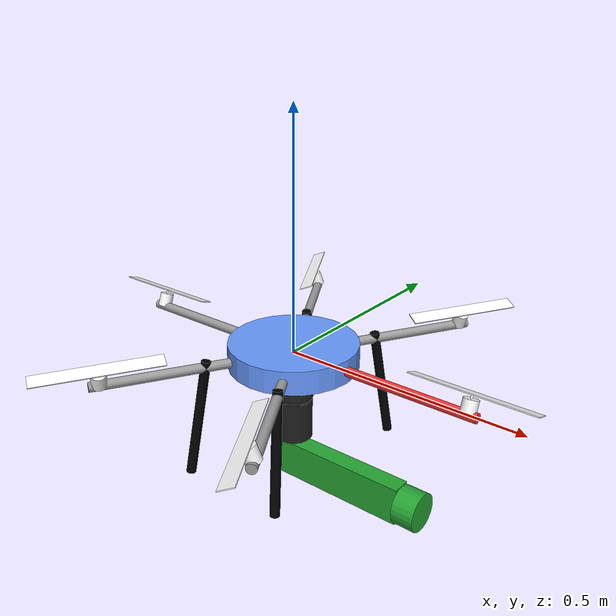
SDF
<?xml version="1.0" ?>

<sdf version="1.5">
  <model name="mrsim-tilthex">
    <link name="base">
      <inertial>
        <mass>2.3</mass>
        <inertia>
          <ixx>0.0115</ixx><ixy>0</ixy><ixz>0</ixz>
          <iyy>0.0114</iyy><iyz>0</iyz>
          <izz>0.0194</izz>
        </inertia>
      </inertial>

      <collision name="base">
	<pose>0 0 0 0 0 0</pose>
        <geometry>
          <cylinder><radius>0.1354</radius><length>0.05</length></cylinder>
        </geometry>
      </collision>
      <!-- three spheres to make contact stable -->
      <collision name="land_1">
        <pose>0.2 0 -0.21 0 0 0</pose>
        <geometry>
          <sphere><radius>0.03</radius></sphere>
        </geometry>
      </collision>
      <collision name="land_2">
        <pose>-0.1 0.173 -0.21 0 0 0</pose>
        <geometry>
          <sphere><radius>0.03</radius></sphere>
        </geometry>
      </collision>
      <collision name="land_3">
        <pose>-0.1 -0.173 -0.21 0 0 0</pose>
        <geometry>
          <sphere><radius>0.03</radius></sphere>
        </geometry>
      </collision>

      <visual name="body">
        <geometry>
          <cylinder><radius>0.1354</radius><length>0.05</length></cylinder>
        </geometry>
        <material>
          <ambient>0.4 0.6 1.0 1</ambient>
          <diffuse>0.4 0.6 1.0 1</diffuse>
        </material>
      </visual>

      <visual name="lander-1">
        <pose>0.1025 0.1776 -0.11 3.1416 -0.1736 1.0472</pose>
        <geometry>
          <cylinder><radius>0.01</radius><length>0.25</length></cylinder>
        </geometry>
        <material>
          <ambient>0 0 0 1.0</ambient>
          <diffuse>0 0 0 1.0</diffuse>
        </material>
      </visual>

      <visual name="lander-2">
        <pose>-0.1025 0.1776 -0.11 3.1416 -0.1736 2.0944</pose>
        <geometry>
          <cylinder><radius>0.01</radius><length>0.25</length></cylinder>
        </geometry>
        <material>
          <ambient>0 0 0 1.0</ambient>
          <diffuse>0 0 0 1.0</diffuse>
        </material>
      </visual>

      <visual name="lander-3">
       <pose>-0.1025 -0.1776 -0.11 3.1416 0.1736 1.0472</pose>
        <geometry>
          <cylinder><radius>0.01</radius><length>0.25</length></cylinder>
        </geometry>
        <material>
          <ambient>0 0 0 1.0</ambient>
          <diffuse>0 0 0 1.0</diffuse>
        </material>
      </visual>

      <visual name="lander-4">
        <pose>0.1025 -0.1776 -0.11 3.1416 0.1736 2.0944</pose>
        <geometry>
          <cylinder><radius>0.01</radius><length>0.25</length></cylinder>
        </geometry>
        <material>
          <ambient>0 0 0 1.0</ambient>
          <diffuse>0 0 0 1.0</diffuse>
        </material>
      </visual>

      <visual name="arm-1">
        <pose>0.2150 0 0 0 1.5708 0</pose>
        <geometry>
          <cylinder><radius>0.01</radius><length>0.38998</length></cylinder>
        </geometry>
        <material>
          <ambient>1.0 0.2 0.2 1.0</ambient>
          <diffuse>1.0 0.2 0.2 1.0</diffuse>
        </material>
      </visual>
      <visual name="arm-2">
        <pose>0.1025 0.1776 0 0 1.5708 1.0472</pose>
        <geometry>
          <cylinder><radius>0.01</radius><length>0.40998</length></cylinder>
        </geometry>
        <material>
          <ambient>0.6 0.6 0.6 1</ambient>
          <diffuse>0.6 0.6 0.6 1</diffuse>
        </material>
      </visual>
      <visual name="arm-3">
        <pose>-0.1025 0.1776 0 0 1.5708 2.0944</pose>
        <geometry>
          <cylinder><radius>0.01</radius><length>0.40998</length></cylinder>
        </geometry>
        <material>
          <ambient>0.6 0.6 0.6 1</ambient>
          <diffuse>0.6 0.6 0.6 1</diffuse>
        </material>
      </visual>
      <visual name="arm-4">
        <pose>-0.2150 0 0 0 1.5708 0</pose>
        <geometry>
          <cylinder><radius>0.01</radius><length>0.38998</length></cylinder>
        </geometry>
        <material>
          <ambient>0.6 0.6 0.6 1</ambient>
          <diffuse>0.6 0.6 0.6 1</diffuse>
        </material>
      </visual>
      <visual name="arm-5">
        <pose>-0.1025 -0.1776 0 0 1.5708 -2.0944</pose>
        <geometry>
          <cylinder><radius>0.01</radius><length>0.40998</length></cylinder>
        </geometry>
        <material>
          <ambient>0.6 0.6 0.6 1</ambient>
          <diffuse>0.6 0.6 0.6 1</diffuse>
        </material>
      </visual>
      <visual name="arm-6">
        <pose>0.1025 -0.1776 0 0 1.5708 -1.0472</pose>
        <geometry>
          <cylinder><radius>0.01</radius><length>0.40998</length></cylinder>
        </geometry>
        <material>
          <ambient>0.6 0.6 0.6 1</ambient>
          <diffuse>0.6 0.6 0.6 1</diffuse>
        </material>
      </visual>
    </link>

    <include>
      <uri>model://mrsim-rotor</uri>
      <name>rotor-1</name>
      <pose>0.38998 0 0 -0.349066 0 0</pose>
    </include>
    <joint name="motor-1" type="revolute">
      <parent>base</parent>
      <child>rotor-1::propeller</child>
      <axis><xyz>0 0 1</xyz></axis>
    </joint>

    <include>
      <uri>model://mrsim-rotor</uri>
      <name>rotor-2</name>
      <pose>0.195 0.3377 0 0.349066 0 1.0472</pose>
    </include>
    <joint name="motor-2" type="revolute">
      <parent>base</parent>
      <child>rotor-2::propeller</child>
      <axis><xyz>0 0 1</xyz></axis>
    </joint>

    <include>
      <uri>model://mrsim-rotor</uri>
      <name>rotor-3</name>
      <pose>-0.195 0.3377 0 -0.349066 0 2.0944</pose>
    </include>
    <joint name="motor-3" type="revolute">
      <parent>base</parent>
      <child>rotor-3::propeller</child>
      <axis><xyz>0 0 1</xyz></axis>
    </joint>

    <include>
      <uri>model://mrsim-rotor</uri>
      <name>rotor-4</name>
      <pose>-0.38998 0 0 -0.349066 0 0</pose>
    </include>
    <joint name="motor-4" type="revolute">
      <parent>base</parent>
      <child>rotor-4::propeller</child>
      <axis><xyz>0 0 1</xyz></axis>
    </joint>

    <include>
      <uri>model://mrsim-rotor</uri>
      <name>rotor-5</name>
      <pose>-0.195 -0.3377 0 0.349066 0 1.0472</pose>
    </include>
    <joint name="motor-5" type="revolute">
      <parent>base</parent>
      <child>rotor-5::propeller</child>
      <axis><xyz>0 0 1</xyz></axis>
    </joint>

    <include>
      <uri>model://mrsim-rotor</uri>
      <name>rotor-6</name>
      <pose>0.195 -0.3377 0 -0.349066 0 2.0944</pose>
    </include>
    <joint name="motor-6" type="revolute">
      <parent>base</parent>
      <child>rotor-6::propeller</child>
      <axis><xyz>0 0 1</xyz></axis>
    </joint>

    <joint name="base-to-arm" type="fixed">
      <parent>base</parent>
      <child>arm_base</child>
      <axis><xyz>0 0 1</xyz></axis>
    </joint>

    <link name='arm_base'>
      <pose>0 0 -0.025 3.1415 0 0</pose>
      <inertial>
        <pose>0 0 0.0641 0 0 0</pose>
        <mass>0.412</mass>
        <inertia>
          <ixx>0.000788644</ixx>
          <ixy>0</ixy>
          <ixz>0</ixz>
          <iyy>0.000788644</iyy>
          <iyz>-0.000002208</iyz>
          <izz>0.000511741</izz>
        </inertia>
      </inertial>
      <collision name='arm_base_geom_collision'>
        <pose>0 0 0.035 0 0 0</pose>
        <geometry>
          <cylinder>
            <length>0.07</length>
            <radius>0.043</radius>
          </cylinder>
        </geometry>
        <surface>
          <contact>
            <ode/>
          </contact>
          <friction>
            <ode/>
          </friction>
        </surface>
      </collision>
      <visual name='arm_base_visual_visual'>
        <pose>0 0 0.035 0 0 0</pose>
        <geometry>
          <cylinder>
            <length>0.07</length>
            <radius>0.043</radius>
          </cylinder>
        </geometry>
        <material>
          <script>
            <name>Gazebo/Black</name>
            <uri>file://media/materials/scripts/gazebo.material</uri>
          </script>
          <diffuse>0 0 0 1</diffuse>
          <ambient>0 0 0 1</ambient>
        </material>
      </visual>
      <self_collide>true</self_collide>
    </link>
    <joint name='joint1' type='revolute'>
      <pose relative_to='arm_base'>0 0 0.053999999999999999 0 0 0</pose>
      <parent>arm_base</parent>
      <child>link1</child>
      <axis>
        <xyz>0 0 1</xyz>
        <limit>
          <lower>-100</lower>
          <upper>100</upper>
          <effort>50</effort>
          <velocity>5</velocity>
        </limit>
        <dynamics>
          <damping>5.3000000000000001e-06</damping>
          <friction>0.20000000000000001</friction>
          <spring_reference>0</spring_reference>
          <spring_stiffness>0</spring_stiffness>
        </dynamics>
      </axis>
    </joint>
    <link name='link1'>
      <pose relative_to='joint1'>0 0 0 0 0 0</pose>
      <inertial>
        <pose>0 0 0.104 0 0 0</pose>
        <mass>0.276</mass>
        <inertia>
          <ixx>0.001342508</ixx>
          <ixy>0</ixy>
          <ixz>0</ixz>
          <iyy>0.001342508</iyy>
          <iyz>0</iyz>
          <izz>0.000152961</izz>
        </inertia>
      </inertial>
      <collision name='link1_geom_collision'>
        <pose>0 0 0.07 0 0 0</pose>
        <geometry>
          <cylinder>
            <length>0.09</length>
            <radius>0.04</radius>
          </cylinder>
        </geometry>
        <surface>
          <contact>
            <ode/>
          </contact>
          <friction>
            <ode/>
          </friction>
        </surface>
      </collision>
      <visual name='link1_visual_visual'>
        <pose>0 0 0.07 0 0 0</pose>
        <geometry>
          <cylinder>
            <length>0.09</length>
            <radius>0.04</radius>
          </cylinder>
        </geometry>
        <material>
          <script>
            <name>Gazebo/Black</name>
            <uri>file://media/materials/scripts/gazebo.material</uri>
          </script>
          <diffuse>0 0 0 1</diffuse>
          <ambient>0 0 0 1</ambient>
        </material>
      </visual>
      <self_collide>true</self_collide>
    </link>
    <joint name='joint2' type='revolute'>
      <pose relative_to='link1'>0 0 0.16700000000000001 1.5707 0 0</pose>
      <parent>link1</parent>
      <child>link2</child>
      <axis>
        <xyz>0 0 1</xyz>
        <limit>
          <lower>-6.2830000000000004</lower>
          <upper>6.2830000000000004</upper>
          <effort>50</effort>
          <velocity>5</velocity>
        </limit>
        <dynamics>
          <damping>4.1999999999999996e-06</damping>
          <friction>0.11</friction>
          <spring_reference>0</spring_reference>
          <spring_stiffness>0</spring_stiffness>
        </dynamics>
      </axis>
    </joint>
    <link name='link2'>
      <pose relative_to='joint2'>0 0 0 0 0 0</pose>
      <inertial>
        <pose>0.21 0 0.0036 0 0 0</pose>
        <mass>0.554</mass>
        <inertia>
          <ixx>0.00030867</ixx>
          <ixy>0</ixy>
          <ixz>0.00006842</ixz>
          <iyy>0.00629935</iyy>
          <iyz>0</iyz>
          <izz>0.006337563</izz>
        </inertia>
      </inertial>
      <collision name='link2_geom1_collision'>
        <pose>0.115 0 0 0 0 0</pose>
        <geometry>
          <box>
            <size>0.31 0.08 0.04</size>
          </box>
        </geometry>
        <surface>
          <contact>
            <ode/>
          </contact>
          <friction>
            <ode/>
          </friction>
        </surface>
      </collision>
      <collision name='link2_geom2_collision_1'>
        <pose>0.295 0 0 0 1.5707 0</pose>
        <geometry>
          <cylinder>
            <length>0.0475</length>
            <radius>0.04</radius>
          </cylinder>
        </geometry>
        <surface>
          <contact>
            <ode/>
          </contact>
          <friction>
            <ode/>
          </friction>
        </surface>
      </collision>
      <visual name='link2_visual1_visual'>
        <pose>0.115 0 0 0 0 0</pose>
        <geometry>
          <box>
            <size>0.31 0.08 0.04</size>
          </box>
        </geometry>
        <material>
          <script>
            <name>Gazebo/Green</name>
            <uri>file://media/materials/scripts/gazebo.material</uri>
          </script>
          <diffuse>0 1 0 1</diffuse>
          <ambient>0 1 0 1</ambient>
        </material>
      </visual>
      <visual name='link2_visual2_visual_1'>
        <pose>0.295 0 0 0 1.5707 0</pose>
        <geometry>
          <cylinder>
            <length>0.0475</length>
            <radius>0.04</radius>
          </cylinder>
        </geometry>
        <material>
          <script>
            <name>Gazebo/Green</name>
            <uri>file://media/materials/scripts/gazebo.material</uri>
          </script>
          <diffuse>0 1 0 1</diffuse>
          <ambient>0 1 0 1</ambient>
        </material>
      </visual>
      <self_collide>true</self_collide>
    </link>

    <plugin name='dxsim' filename='dxsim-gazebo.so'>
      <pty>/tmp/pty-boomslang</pty>
      <motors>
        <motor>
          <joint spin='ccw'>joint1</joint>
          <p0>0.0</p0>
          <id>1</id>
          <noise>0.001</noise>
          <debug>0</debug>
        </motor>
        <motor>
          <joint spin='ccw'>joint2</joint>
          <p0>0.0</p0>
          <id>2</id>
          <noise>0.001</noise>
          <debug>0</debug>
        </motor>
        <motor>
          <joint spin='ccw'>joint3</joint>
          <p0>0.0</p0>
          <id>3</id>
          <noise>0.001</noise>
          <debug>0</debug>
        </motor>
        <motor>
          <joint spin='ccw'>joint4</joint>
          <p0>0.0</p0>
          <id>4</id>
          <noise>0.001</noise>
          <debug>0</debug>
        </motor>
      </motors>
    </plugin>

    <plugin name="mrsim" filename="mrsim-gazebo.so">
      <link>base</link>

      <rotors>
        <noise>0.01</noise>
        <cf>13.0e-4</cf>
        <ct>1.996e-5</ct>
        <vfxy>0.5</vfxy><vfz>0.4</vfz>
        <vtxy>0.2</vtxy><vtz>0.2</vtz>

        <rotor><joint spin="cw">motor-1</joint></rotor>
        <rotor><joint spin="ccw">motor-2</joint></rotor>
        <rotor><joint spin="cw">motor-3</joint></rotor>
        <rotor><joint spin="ccw">motor-4</joint></rotor>
        <rotor><joint spin="cw">motor-5</joint></rotor>
        <rotor><joint spin="ccw">motor-6</joint></rotor>
      </rotors>
    </plugin>
</model>
</sdf>

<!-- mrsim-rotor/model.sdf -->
<sdf version="1.5">
  <model name="mrsim-rotor">
    <link name="propeller">
      <inertial>
        <mass>0.07</mass>
        <inertia>
          <ixx>4e-5</ixx><ixy>0</ixy><ixz>0</ixz>
          <iyy>4e-5</iyy><iyz>0</iyz>
          <izz>8e-5</izz>
        </inertia>
      </inertial>

      <collision name="collision">
        <pose>0 0 0.04 0 0 0</pose>
        <geometry>
          <cylinder><radius>0.127</radius><length>0.002</length></cylinder>
        </geometry>
      </collision>

      <visual name="motor">
        <pose>0 0 0.015 0 0 0</pose>
        <geometry>
          <cylinder><radius>0.015</radius><length>0.03</length></cylinder>
        </geometry>
        <material>
          <ambient>0.1 0.1 0.1 1</ambient>
          <diffuse>1.0 1.0 1.0 1</diffuse>
        </material>
      </visual>

      <visual name="axle">
        <pose>0 0 0.035 0 0 0</pose>
        <geometry>
          <cylinder><radius>0.002</radius><length>0.01</length></cylinder>
        </geometry>
        <material>
          <ambient>0.1 0.1 0.1 1</ambient>
          <diffuse>1.0 1.0 1.0 1</diffuse>
        </material>
      </visual>

      <visual name="blade">
        <pose>0 0 0.04 0 0 0</pose>
        <geometry>
          <box><size>0.25 0.03 0.002</size></box>
        </geometry>
        <material>
          <ambient>0.1 0.1 0.1 1</ambient>
          <diffuse>1.0 1.0 1.0 1</diffuse>
        </material>
      </visual>
    </link>
  </model>
</sdf>
